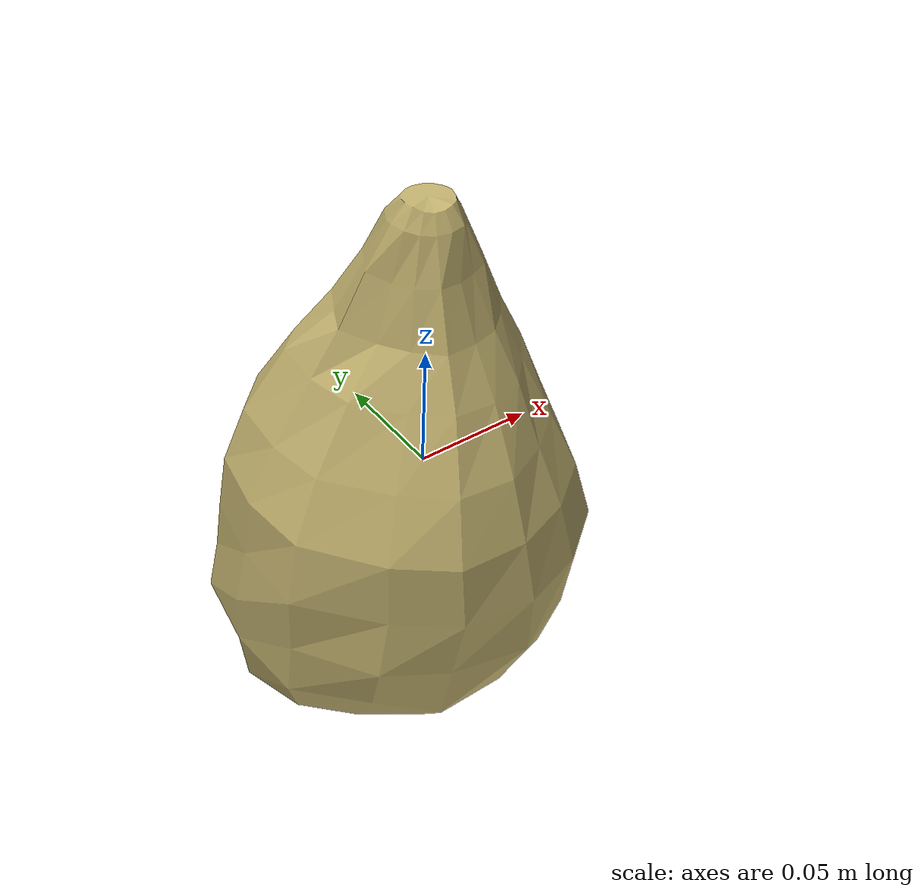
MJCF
<mujoco model="Lettuce_26">
  <compiler autolimits="true" boundmass="0.01" angle="radian"/>
  <default>
    <default class="/">
      <default class="__VISUAL_MJT__">
        <geom contype="0" conaffinity="0" group="0"/>
      </default>
      <default class="__STRUCTURAL_MJT__">
        <geom contype="8" conaffinity="15" group="4" friction="0.90000000000000002 0.90000000000000002 0.001" solref="0.025000000000000001 1" solimp="0.998 0.998 0.001"/>
      </default>
      <default class="__DYNAMIC_MJT__">
        <geom contype="1" conaffinity="15" group="4" friction="0.90000000000000002 0.90000000000000002 0.001" solref="0.025000000000000001 1" solimp="0.998 0.998 0.001"/>
      </default>
    </default>
  </default>
  <asset>
    <texture name="Lettuce3_Mat" type="2d" file="Lettuce3_AlbedoTransparency.png"/>
    <material name="material_Lettuce3_Mat" class="/" texture="Lettuce3_Mat" specular="0.5" shininess="0.5" rgba="1 0.95246359999999997 0.62735850000000004 1"/>
    <mesh name="Lettuce_26_lettuce_c6" class="/" file="Lettuce_26_lettuce_c6/Lettuce_26_lettuce_c6.obj" scale="1 1 1"/>
  </asset>
  <worldbody>
    <body name="Lettuce_26">
      <joint name="Lettuce_26_free" class="/" type="free" pos="0 0 0" axis="0 0 1" stiffness="0" range="0 0" armature="0" damping="0.10000000000000001" frictionloss="0"/>
      <body name="Lettuce_26_lettuce_c6" pos="-0.0057400000000000003 0.0011000000000000001 -0.01299" quat="1 0 0 0">
        <geom name="Lettuce_26_lettuce_c6" class="__VISUAL_MJT__" type="mesh" material="material_Lettuce3_Mat" shellinertia="true" mesh="Lettuce_26_lettuce_c6"/>
        <geom name="Lettuce_26_PrimitiveCollider_0" class="__DYNAMIC_MJT__" type="capsule" size="0.069321051239967346 0.020308390259742737" rgba="0 1 0 1" pos="-0.005741393193602562 0.0017438456416130066 -0.010838545858860016" quat="1.4329927689161285e-06 0.99354850892118918 -0.11340793807490539 -1.6331902878696794e-07"/>
        <geom name="Lettuce_26_PrimitiveCollider_1" class="__DYNAMIC_MJT__" type="capsule" size="0.032136619091033936 0.012565910816192627" rgba="0 1 0 1" pos="0.0040630809962749481 0.0012648941483348608 0.081219926476478577" quat="1.4751396609986736e-06 0.99999999999891198 0 0"/>
      </body>
    </body>
  </worldbody>
</mujoco>
